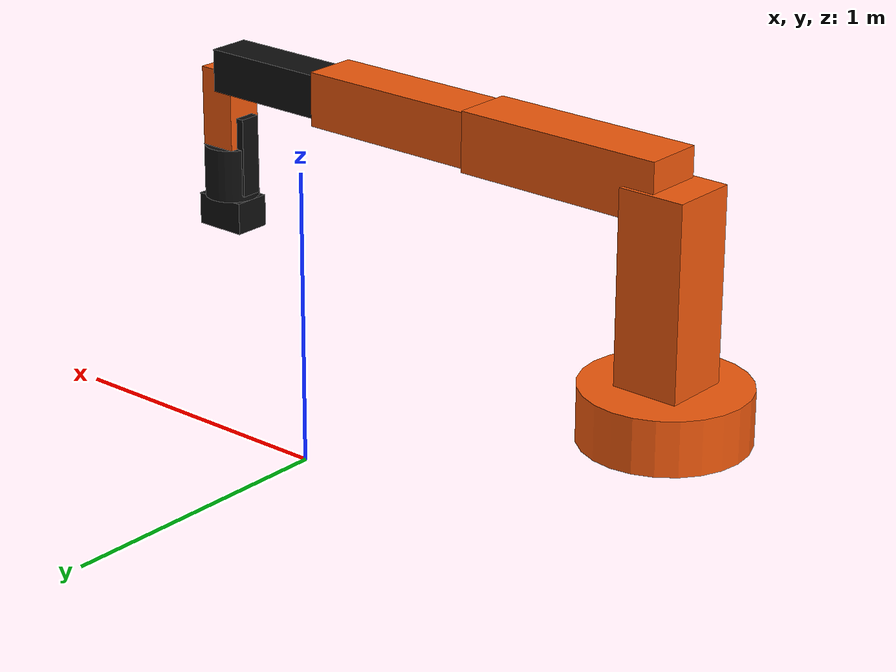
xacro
<?xml version="1.0"?>

<robot name="industrial_robot"
       xmlns:xacro="http://www.ros.org/wiki/xacro">
  <!-- WORLD ANCHOR -->

  <link name="world"/>

  <!-- MATERIALS -->

  <material name="robot_blue">
    <color rgba="0.95 0.35 0.05 1"/>
  </material>

  <material name="robot_dark">
    <color rgba="0.06 0.06 0.06 1"/>
  </material>

  <material name="metal">
    <color rgba="0.65 0.65 0.65 1"/>
  </material>

  <!-- BASE -->

  <link name="robot_base">

    <inertial>
      <mass value="10.0"/>
      <inertia ixx="0.5" ixy="0" ixz="0"
               iyy="0.5" iyz="0" izz="0.5"/>
    </inertial>

    <visual>
      <geometry>
        <cylinder radius="0.30" length="0.20"/>
      </geometry>
      <material name="robot_blue"/>
    </visual>

  </link>

  <!-- FIX ROBOT BASE TO WORLD -->

  <joint name="world_to_robot_base" type="fixed">

    <parent link="world"/>
    <child link="robot_base"/>

    <origin xyz="-0.8 -0.9 0.1" rpy="0 0 0"/>

  </joint>

  <!-- JOINT 1 / LOWER COLUMN -->

  <link name="link1">

    <inertial>
      <mass value="5.0"/>
      <inertia ixx="0.1" ixy="0" ixz="0"
               iyy="0.1" iyz="0" izz="0.1"/>
    </inertial>

    <visual>
      <origin xyz="0 0 0.35"/>
      <geometry>
        <box size="0.25 0.25 0.70"/>
      </geometry>
      <material name="robot_blue"/>
    </visual>

  </link>

  <joint name="joint1" type="revolute">

    <parent link="robot_base"/>
    <child link="link1"/>

    <origin xyz="0 0 0.10" rpy="0 0 0"/>

    <axis xyz="0 0 1"/>

    <limit lower="-3.14" upper="3.14"
           effort="100" velocity="1.5"/>

  </joint>

  <!-- LINK 2 -->

  <link name="link2">

    <inertial>
      <mass value="4.0"/>
      <inertia ixx="0.2" ixy="0" ixz="0"
               iyy="0.2" iyz="0" izz="0.05"/>
    </inertial>

    <visual>
      <origin xyz="0 0 0.40"/>
      <geometry>
        <box size="0.22 0.22 0.80"/>
      </geometry>
      <material name="robot_blue"/>
    </visual>

  </link>

  <joint name="joint2" type="revolute">

    <parent link="link1"/>
    <child link="link2"/>

    <origin xyz="0 0 0.70" rpy="0 1.5708 0"/>

    <axis xyz="0 1 0"/>

    <limit lower="-2.5" upper="2.5"
           effort="100" velocity="1.5"/>

  </joint>

  <!-- LINK 3 -->

  <link name="link3">

    <inertial>
      <mass value="3.0"/>
      <inertia ixx="0.15" ixy="0" ixz="0"
               iyy="0.15" iyz="0" izz="0.04"/>
    </inertial>

    <visual>
      <origin xyz="0 0 0.35"/>
      <geometry>
        <box size="0.20 0.20 0.70"/>
      </geometry>
      <material name="robot_blue"/>
    </visual>

  </link>

  <joint name="joint3" type="revolute">

    <parent link="link2"/>
    <child link="link3"/>

    <origin xyz="0 0 0.80" rpy="0 0 0"/>

    <axis xyz="0 1 0"/>

    <limit lower="-2.5" upper="2.5"
           effort="100" velocity="1.5"/>

  </joint>

  <!-- LINK 4 -->

  <link name="link4">

    <inertial>
      <mass value="2.0"/>
      <inertia ixx="0.08" ixy="0" ixz="0"
               iyy="0.08" iyz="0" izz="0.03"/>
    </inertial>

    <visual>
      <origin xyz="0 0 0.25"/>
      <geometry>
        <box size="0.16 0.16 0.50"/>
      </geometry>
      <material name="robot_dark"/>
    </visual>

  </link>

  <joint name="joint4" type="revolute">

    <parent link="link3"/>
    <child link="link4"/>

    <origin xyz="0 0 0.70" rpy="0 0 0"/>

    <axis xyz="0 0 1"/>

    <limit lower="-3.14" upper="3.14"
           effort="50" velocity="2.0"/>

  </joint>

  <!-- LINK 5 -->

  <link name="link5">

    <inertial>
      <mass value="1.5"/>
      <inertia ixx="0.05" ixy="0" ixz="0"
               iyy="0.05" iyz="0" izz="0.02"/>
    </inertial>

    <visual>
      <origin xyz="0 0 0.20"/>
      <geometry>
        <box size="0.14 0.14 0.40"/>
      </geometry>
      <material name="robot_blue"/>
    </visual>

  </link>

  <joint name="joint5" type="revolute">

    <parent link="link4"/>
    <child link="link5"/>

    <origin xyz="0 0 0.50" rpy="0 1.5708 0"/>

    <axis xyz="0 1 0"/>

    <limit lower="-2.5" upper="2.5"
           effort="50" velocity="2.0"/>

  </joint>

  <!-- LINK 6 / WRIST -->

  <link name="link6">

    <inertial>
      <mass value="1.0"/>
      <inertia ixx="0.03" ixy="0" ixz="0"
               iyy="0.03" iyz="0" izz="0.03"/>
    </inertial>

    <visual>
      <geometry>
        <cylinder radius="0.10" length="0.20"/>
      </geometry>
      <material name="robot_dark"/>
    </visual>

  </link>

  <joint name="joint6" type="revolute">

    <parent link="link5"/>
    <child link="link6"/>

    <origin xyz="0 0 0.40" rpy="0 0 0"/>

    <axis xyz="0 0 1"/>

    <limit lower="-3.14" upper="3.14"
           effort="30" velocity="2.0"/>

  </joint>

  <!-- GRIPPER / END EFFECTOR -->

  <link name="gripper_palm">

    <inertial>
      <mass value="0.5"/>
      <inertia ixx="0.01" ixy="0" ixz="0"
               iyy="0.01" iyz="0" izz="0.01"/>
    </inertial>

    <visual>
      <origin xyz="0 0 0.06"/>
      <geometry>
        <box size="0.20 0.14 0.12"/>
      </geometry>
      <material name="robot_dark"/>
    </visual>

  </link>

  <joint name="gripper_palm_joint" type="fixed">

    <parent link="link6"/>
    <child link="gripper_palm"/>

    <origin xyz="0 0 0.10" rpy="0 0 0"/>

  </joint>

  <!-- LEFT GRIPPER FINGER -->

  <link name="gripper_left_finger">

    <inertial>
      <mass value="0.2"/>
      <inertia ixx="0.005" ixy="0" ixz="0"
               iyy="0.005" iyz="0" izz="0.005"/>
    </inertial>

    <visual>
      <origin xyz="0 0 -0.15"/>
      <geometry>
        <box size="0.06 0.08 0.30"/>
      </geometry>
      <material name="robot_dark"/>
    </visual>

    <!-- PHYSICAL COLLISION -->
    <collision>
      <origin xyz="0 0 -0.15"/>
      <geometry>
        <box size="0.06 0.08 0.30"/>
      </geometry>

      <surface>
        <friction>
          <ode>
           <mu>5.0</mu>
            <mu2>5.0</mu2>
          </ode>
        </friction>
      </surface>
    </collision>

</link>

  <joint name="gripper_left_finger_joint" type="prismatic">

    <parent link="gripper_palm"/>
    <child link="gripper_left_finger"/>

    <origin xyz="0.07 0 -0.02" rpy="0 0 0"/>

    <axis xyz="1 0 0"/>

    <limit lower="0.0" upper="0.12"
           effort="20" velocity="0.2"/>

  </joint>

  <!-- RIGHT GRIPPER FINGER -->

  <link name="gripper_right_finger">

    <inertial>
      <mass value="0.2"/>
      <inertia ixx="0.005" ixy="0" ixz="0"
               iyy="0.005" iyz="0" izz="0.005"/>
    </inertial>

    <visual>
      <origin xyz="0 0 -0.15"/>
      <geometry>
        <box size="0.06 0.08 0.30"/>
      </geometry>
      <material name="robot_dark"/>
    </visual>

    <!-- PHYSICAL COLLISION -->
    <collision>
      <origin xyz="0 0 -0.15"/>
      <geometry>
        <box size="0.06 0.08 0.30"/>
      </geometry>

      <surface>
        <friction>
          <ode>
            <mu>5.0</mu>
            <mu2>5.0</mu2>
          </ode>
        </friction>
      </surface>
    </collision>

</link>

  <joint name="gripper_right_finger_joint" type="prismatic">

    <parent link="gripper_palm"/>
    <child link="gripper_right_finger"/>

    <origin xyz="-0.07 0 -0.02" rpy="0 0 0"/>

    <axis xyz="1 0 0"/>

    <limit lower="-0.12" upper="0.00"
           effort="20" velocity="0.2"/>

  </joint>

  <!-- TEMPORARY STATIC ROBOT -->

  <gazebo reference="robot_base">
    <material>Gazebo/Orange</material>
  </gazebo>

  <gazebo reference="link1">
    <material>Gazebo/Orange</material>
  </gazebo>

  <gazebo reference="link2">
    <material>Gazebo/Orange</material>
  </gazebo>

  <gazebo reference="link3">
    <material>Gazebo/Orange</material>
  </gazebo>

  <gazebo reference="link4">
    <material>Gazebo/DarkGrey</material>
  </gazebo>

  <gazebo reference="link5">
    <material>Gazebo/Orange</material>
  </gazebo>

  <gazebo reference="link6">
    <material>Gazebo/DarkGrey</material>
  </gazebo>

  <!-- ROS 2 CONTROL -->

  <gazebo reference="robot_base">
    <gravity>false</gravity>
    <selfCollide>false</selfCollide>
  </gazebo>

  <gazebo reference="link1">
    <gravity>false</gravity>
    <selfCollide>false</selfCollide>
  </gazebo>

  <gazebo reference="link2">
    <gravity>false</gravity>
    <selfCollide>false</selfCollide>
  </gazebo>

  <gazebo reference="link3">
    <gravity>false</gravity>
    <selfCollide>false</selfCollide>
  </gazebo>

  <gazebo reference="link4">
    <gravity>false</gravity>
    <selfCollide>false</selfCollide>
  </gazebo>

  <gazebo reference="link5">
    <gravity>false</gravity>
    <selfCollide>false</selfCollide>
  </gazebo>

  <gazebo reference="link6">
    <gravity>false</gravity>
    <selfCollide>false</selfCollide>
  </gazebo>

  <gazebo reference="gripper_palm">
    <gravity>false</gravity>
    <selfCollide>false</selfCollide>
  </gazebo>

  <gazebo reference="gripper_left_finger">
    <gravity>false</gravity>
    <selfCollide>false</selfCollide>
    <mu1>5.0</mu1>
    <mu2>5.0</mu2>
  </gazebo>

  <gazebo reference="gripper_right_finger">
    <gravity>false</gravity>
    <selfCollide>false</selfCollide>
    <mu1>5.0</mu1>
    <mu2>5.0</mu2>
  </gazebo>

  <ros2_control name="GazeboSystem" type="system">

    <hardware>
      <plugin>gazebo_ros2_control/GazeboSystem</plugin>
    </hardware>

    <joint name="joint1">
      <command_interface name="position"/>
      <state_interface name="position"/>
      <state_interface name="velocity"/>
    </joint>

    <joint name="joint2">
      <command_interface name="position"/>
      <state_interface name="position"/>
      <state_interface name="velocity"/>
    </joint>

    <joint name="joint3">
      <command_interface name="position"/>
      <state_interface name="position"/>
      <state_interface name="velocity"/>
    </joint>

    <joint name="joint4">
      <command_interface name="position"/>
      <state_interface name="position"/>
      <state_interface name="velocity"/>
    </joint>

    <joint name="joint5">
      <command_interface name="position"/>
      <state_interface name="position"/>
      <state_interface name="velocity"/>
    </joint>

    <joint name="joint6">
      <command_interface name="position"/>
      <state_interface name="position"/>
      <state_interface name="velocity"/>
    </joint>

    <joint name="gripper_left_finger_joint">
      <command_interface name="position"/>
      <state_interface name="position"/>
      <state_interface name="velocity"/>
    </joint>

    <joint name="gripper_right_finger_joint">
      <command_interface name="position"/>
      <state_interface name="position"/>
      <state_interface name="velocity"/>
    </joint>

  </ros2_control>

  <!-- Gazebo ROS 2 Control -->

  <gazebo>
    <plugin
      name="gazebo_ros2_control_workstation1"
      filename="libgazebo_ros2_control.so">

      <robot_param>robot_description</robot_param>
      <robot_param_node>/workstation1/robot_state_publisher</robot_param_node>

      <parameters>
        $(find assembly_line)/config/robot_controllers.yaml
      </parameters>

      <ros>
        <namespace>/workstation1</namespace>
      </ros>

    </plugin>
  </gazebo>

</robot>
